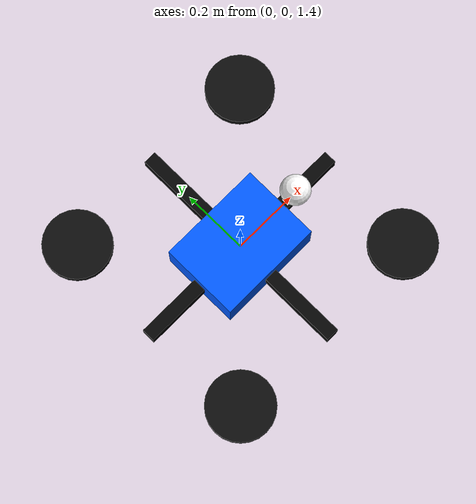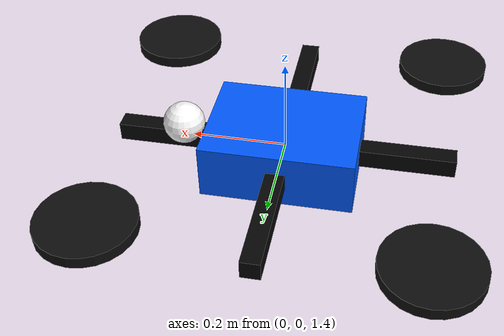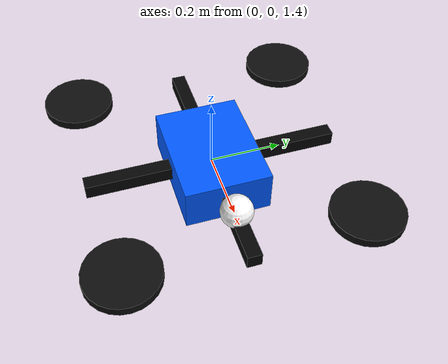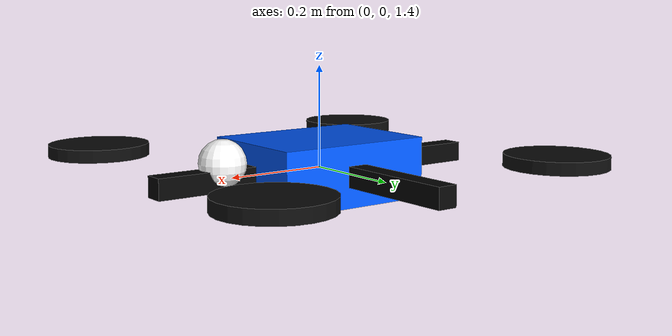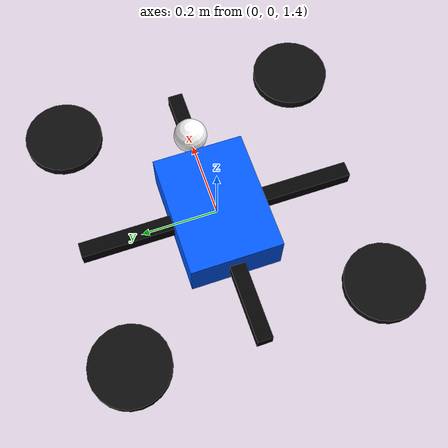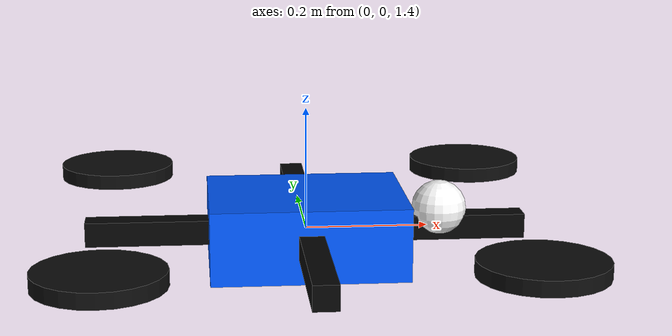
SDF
<?xml version="1.0"?>
<sdf version="1.6">
  <model name="simple_uav">
    <static>false</static>
    <pose>0 0 1.4 0 0 0</pose>
    <link name="base_link">
      <inertial>
        <mass>1.0</mass>
        <inertia>
          <ixx>0.02</ixx><iyy>0.02</iyy><izz>0.04</izz>
          <ixy>0</ixy><ixz>0</ixz><iyz>0</iyz>
        </inertia>
      </inertial>
      <visual name="body">
        <pose>0 0 0 0 0 0</pose>
        <geometry><box><size>0.32 0.24 0.12</size></box></geometry>
        <material><ambient>0.0 0.22 0.95 1</ambient><diffuse>0.0 0.35 1.0 1</diffuse></material>
      </visual>
      <collision name="body_collision">
        <geometry><box><size>0.32 0.24 0.12</size></box></geometry>
      </collision>
      <visual name="arm_x">
        <geometry><box><size>0.72 0.04 0.04</size></box></geometry>
        <material><ambient>0.02 0.02 0.02 1</ambient><diffuse>0.02 0.02 0.02 1</diffuse></material>
      </visual>
      <visual name="arm_y">
        <geometry><box><size>0.04 0.72 0.04</size></box></geometry>
        <material><ambient>0.02 0.02 0.02 1</ambient><diffuse>0.02 0.02 0.02 1</diffuse></material>
      </visual>
      <visual name="front_marker">
        <pose>0.22 0 0.03 0 0 0</pose>
        <geometry><sphere><radius>0.045</radius></sphere></geometry>
        <material><ambient>1.0 1.0 1.0 1</ambient><diffuse>1.0 1.0 1.0 1</diffuse></material>
      </visual>
      <visual name="rotor_fl">
        <pose>0.32 0.32 0.025 0 0 0</pose>
        <geometry><cylinder><radius>0.10</radius><length>0.025</length></cylinder></geometry>
        <material><ambient>0.05 0.05 0.05 1</ambient><diffuse>0.05 0.05 0.05 1</diffuse></material>
      </visual>
      <visual name="rotor_fr">
        <pose>0.32 -0.32 0.025 0 0 0</pose>
        <geometry><cylinder><radius>0.10</radius><length>0.025</length></cylinder></geometry>
        <material><ambient>0.05 0.05 0.05 1</ambient><diffuse>0.05 0.05 0.05 1</diffuse></material>
      </visual>
      <visual name="rotor_rl">
        <pose>-0.32 0.32 0.025 0 0 0</pose>
        <geometry><cylinder><radius>0.10</radius><length>0.025</length></cylinder></geometry>
        <material><ambient>0.05 0.05 0.05 1</ambient><diffuse>0.05 0.05 0.05 1</diffuse></material>
      </visual>
      <visual name="rotor_rr">
        <pose>-0.32 -0.32 0.025 0 0 0</pose>
        <geometry><cylinder><radius>0.10</radius><length>0.025</length></cylinder></geometry>
        <material><ambient>0.05 0.05 0.05 1</ambient><diffuse>0.05 0.05 0.05 1</diffuse></material>
      </visual>
    </link>
  </model>
</sdf>
